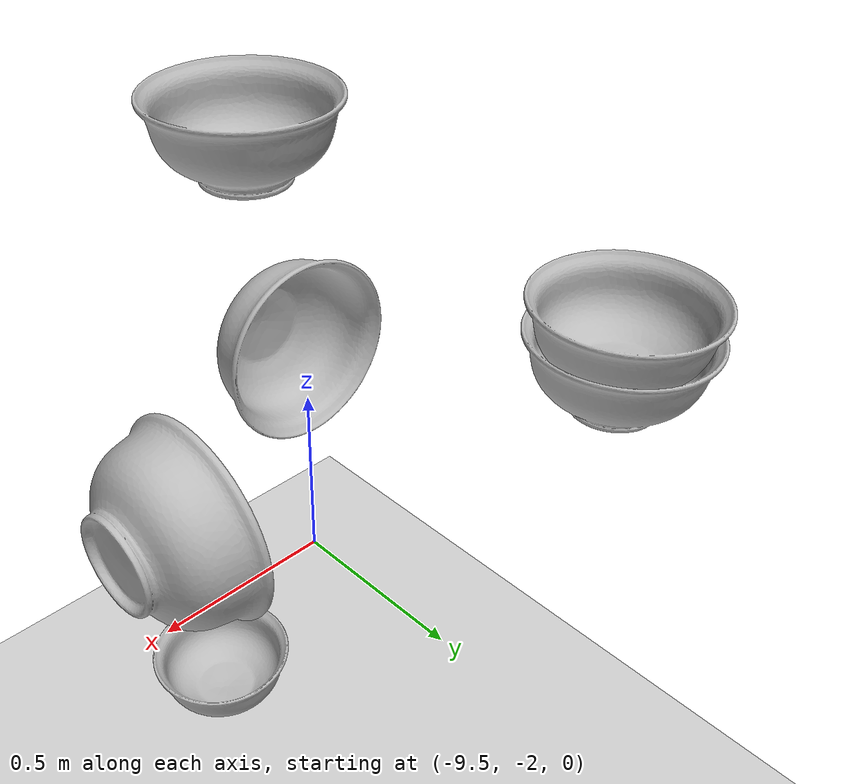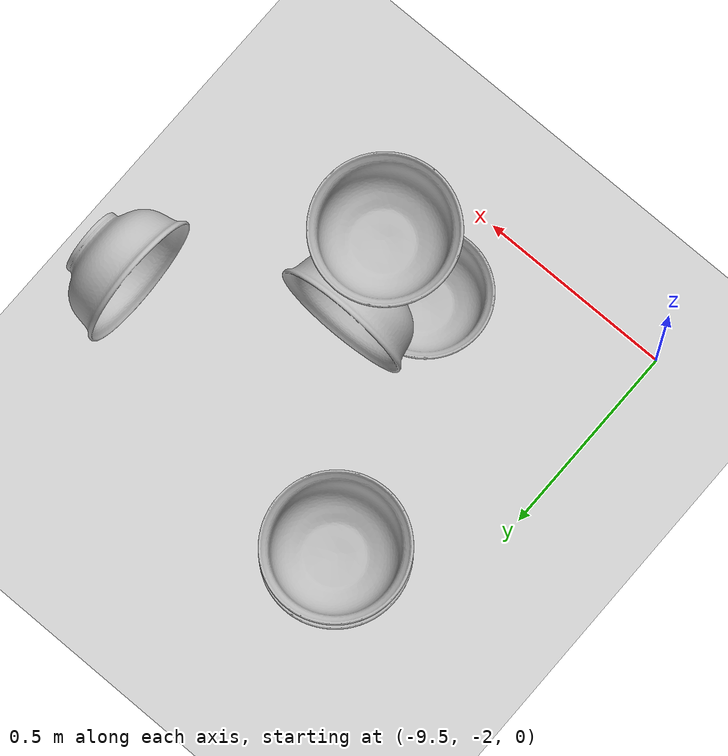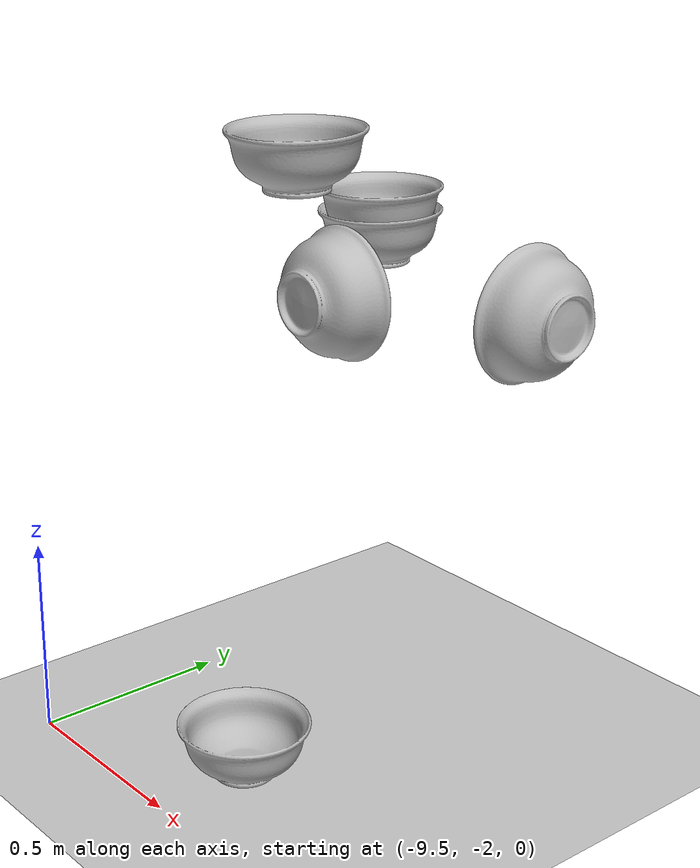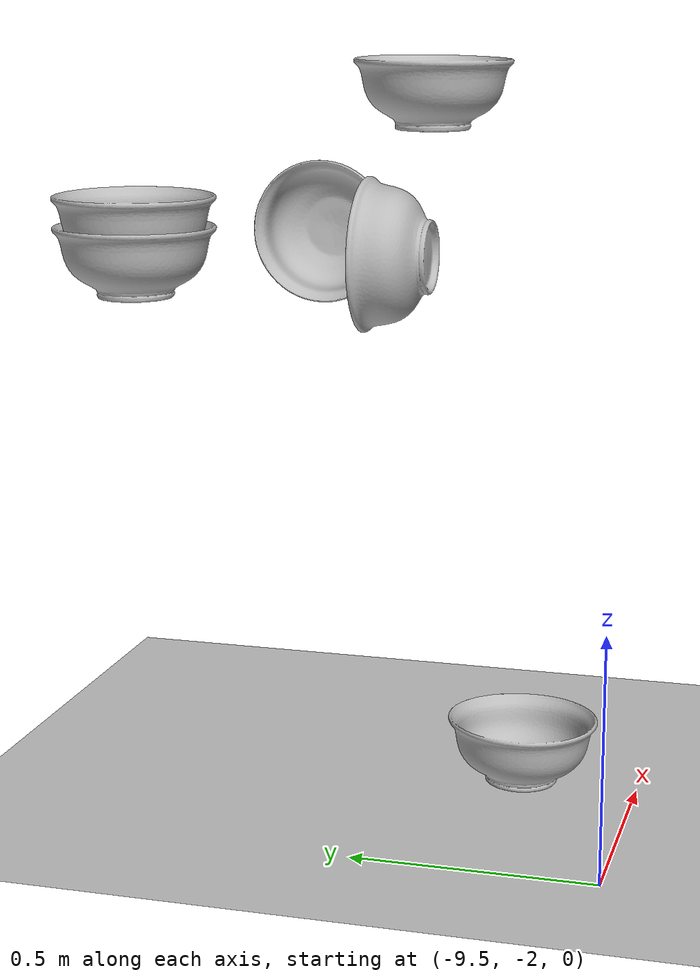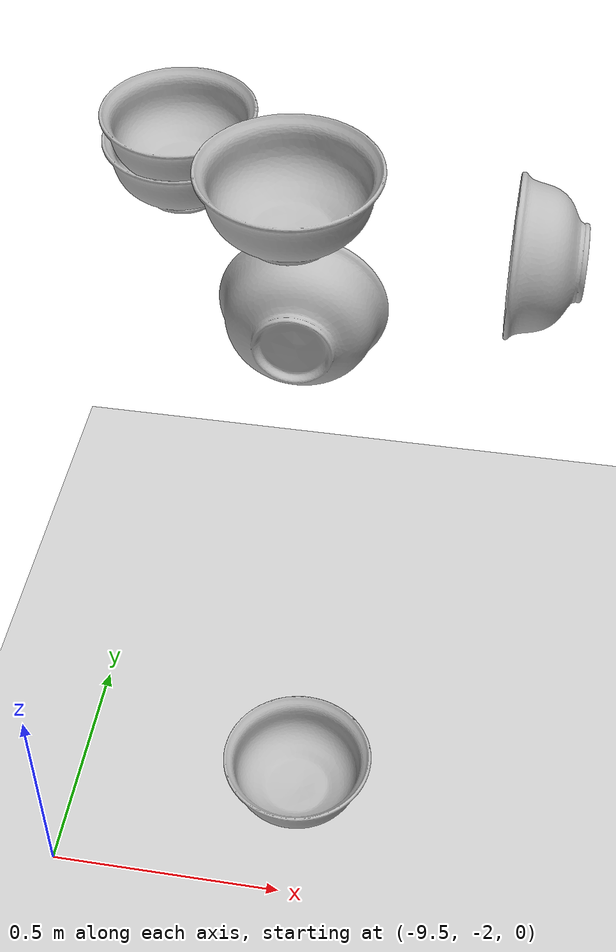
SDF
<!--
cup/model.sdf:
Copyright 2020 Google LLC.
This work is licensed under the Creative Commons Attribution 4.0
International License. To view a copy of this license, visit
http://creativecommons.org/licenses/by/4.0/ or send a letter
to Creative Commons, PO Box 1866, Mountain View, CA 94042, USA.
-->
<sdf version="1.7">
 <world name="worldCobotta">
  <scene><ambient>0.4 0.4 0.4 1.0</ambient><background>0.8 0.8 0.8 1.0</background><grid>false</grid></scene>
  <physics name="1ms" type="ignored">
   <max_step_size>0.001</max_step_size>
   <real_time_factor>1.0</real_time_factor>
  </physics>
  <plugin filename="ignition-gazebo-physics-system" name="ignition::gazebo::systems::Physics"/>
  <plugin filename="ignition-gazebo-sensors-system" name="ignition::gazebo::systems::Sensors">
   <render_engine>ogre</render_engine>
  </plugin>
  <plugin filename="ignition-gazebo-user-commands-system" name="ignition::gazebo::systems::UserCommands"/>
  <plugin filename="ignition-gazebo-scene-broadcaster-system" name="ignition::gazebo::systems::SceneBroadcaster"/>
  <light type="directional" name="sun">
   <cast_shadows>false</cast_shadows>
   <pose>0 0 10 0 0 0</pose>
   <diffuse>0.8 0.8 0.8 1</diffuse>
   <specular>0.2 0.2 0.2 1</specular>
   <direction>0.5 0.1 -0.9</direction>
  </light>
  <model name="ground_plane">
   <static>true</static>
   <link name="link">
    <collision name="collision">
     <geometry><plane><normal>0 0 1</normal><size>100 100</size></plane></geometry>
    </collision>
    <visual name="visual">
     <geometry><plane><normal>0 0 1</normal><size>100 100</size></plane></geometry>
     <material><ambient>0.8 0.8 0.8 1</ambient><diffuse>0.8 0.8 0.8 1</diffuse></material>
    </visual>
   </link>
  </model>
  <include><name>Cup</name><pose>-9.36 -1.02 1.14 0 0 -0.4</pose><uri>file://cup_new/model.sdf</uri></include>
  <include>
   <name>Cup_case</name>
   <pose>-9.36 -1.02 1.08 0 0 -0.4</pose>
   <uri>file://cup_case_new/model.sdf</uri>
  </include>
  <include><name>Plate</name><pose>-9.04 -1.55 1.40 0 0 0</pose><uri>file://plate_new/model.sdf</uri></include>
  <include>
   <name>Plate_case</name>
   <pose>-9.04 -1.55 1.14 -1.5708 0 0</pose>
   <uri>file://plate_case/model.sdf</uri>
  </include>
  <include>
   <name>Table</name>
   <pose>-9.0 -1.75 0 0 0 1.57</pose>
   <uri>file://reflectivetable/model.sdf</uri>
  </include>
  <include>
   <name>Goal case</name>
   <pose>-8.52 -1.2 1.14 -1.5708 0 1.57</pose>
   <uri>file://goal_case/model.sdf</uri>
  </include>
 </world>
</sdf>

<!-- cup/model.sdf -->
<sdf version="1.6">
  <model name="Room_Essentials_Mug_White_Yellow">
    <link name="link_0">

      <!--sposto baricentro tazza (prima sbilanciata causa manico)-->
      <inertial>
        <pose>-0.015 0 0.005 0 0 0</pose>
        <mass>0.4</mass> <inertia>
          <ixx>0.0005</ixx>
          <ixy>0</ixy>
          <ixz>0</ixz>
          <iyy>0.0005</iyy>
          <iyz>0</iyz>
          <izz>0.0005</izz>
        </inertia>
      </inertial>

      <visual name="visual">
        <geometry>
          <mesh>
            <uri>meshes/model.obj</uri>
          </mesh>
        </geometry>
      </visual>

      <collision name="collision_0">
        <geometry>
          <mesh>
            <uri>meshes/model.obj</uri>
          </mesh>
        </geometry>
        <surface>
          <friction>
            <ode>
              <mu>5.0</mu>
              <mu2>5.0</mu2>
            </ode>
          </friction>
          <contact>
            <ode>
              <kp>100000.0</kp>
              <kd>100.0</kd>
              <min_depth>0.001</min_depth>
            </ode>
          </contact>
        </surface>
      </collision>

    </link>
  </model>
</sdf>
